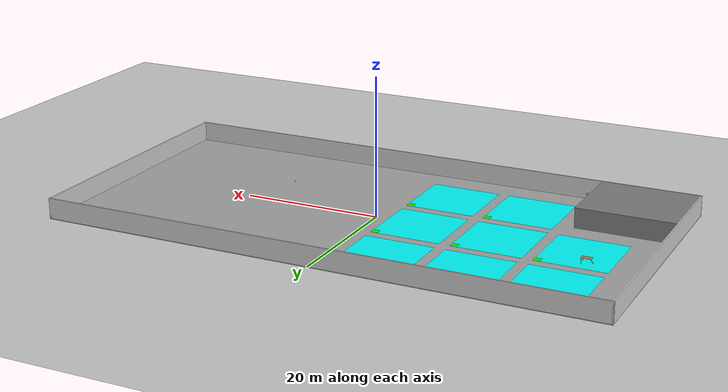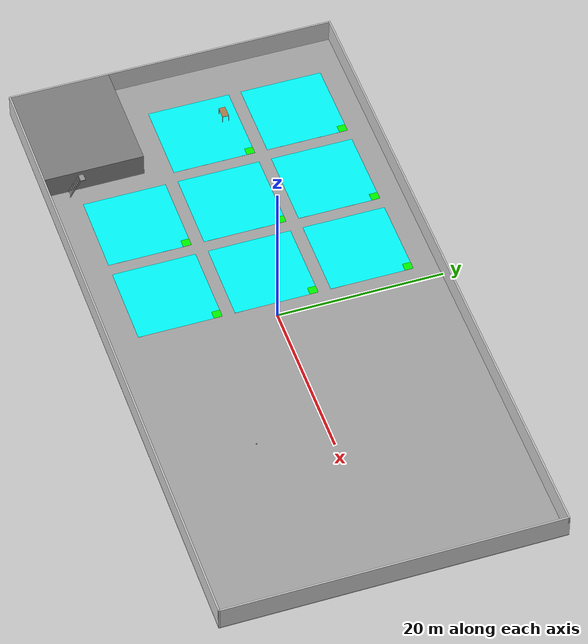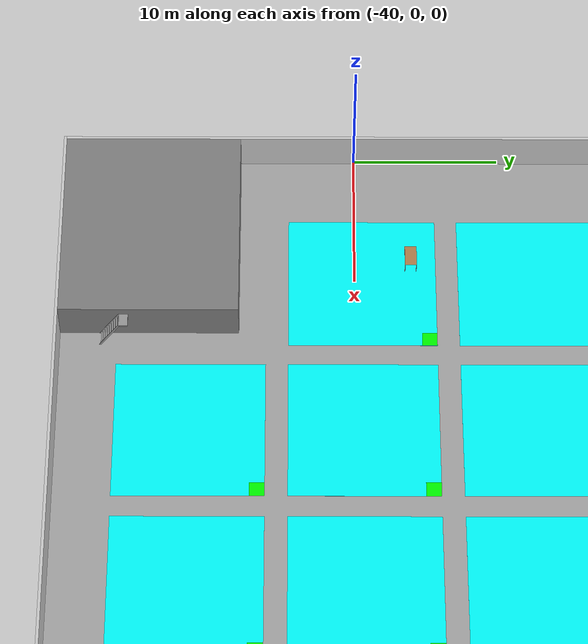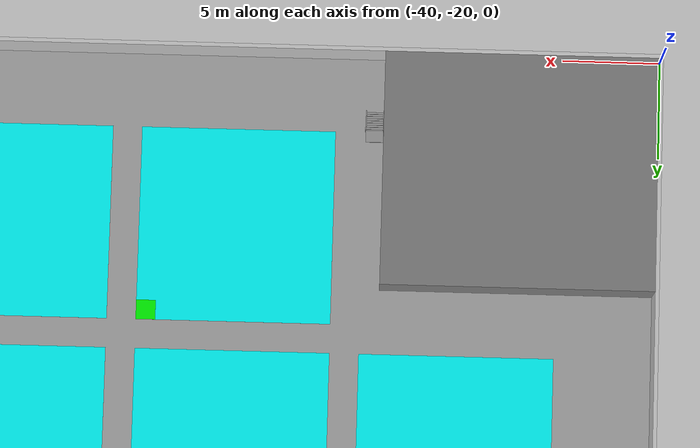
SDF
<sdf version="1.7">
 <world name="warehouse_world">
  <model name="ground_plane">
   <static>1</static>
   <link name="link">
    <collision name="collision">
     <geometry><plane><normal>0 0 1</normal><size>100 100</size></plane></geometry>
     <surface><friction><ode><mu>100</mu><mu2>50</mu2></ode></friction></surface>
    </collision>
    <visual name="visual">
     <cast_shadows>0</cast_shadows>
     <geometry><plane><normal>0 0 1</normal><size>100 100</size></plane></geometry>
     <material>
      <script><uri>file://media/materials/scripts/gazebo.material</uri><name>Gazebo/Grey</name></script>
     </material>
    </visual>
   </link>
  </model>
  <light name="sun" type="directional">
   <pose>0 0 10 0 -0 0</pose>
   <diffuse>0.8 0.8 0.8 1</diffuse>
   <specular>0.2 0.2 0.2 1</specular>
   <attenuation>
    <range>1000</range>
    <constant>0.9</constant>
    <linear>0.01</linear>
    <quadratic>0.001</quadratic>
   </attenuation>
   <direction>-0.5 0.1 -0.9</direction>
   <spot><inner_angle>0</inner_angle><outer_angle>0</outer_angle><falloff>0</falloff></spot>
  </light>
  <scene><ambient>0.8 0.8 0.8 1</ambient><background>0.95 0.95 0.95 1</background><shadows>1</shadows></scene>
  <physics name="default_physics" type="ode">
   <max_step_size>0.001</max_step_size>
   <real_time_factor>1</real_time_factor>
   <real_time_update_rate>1000</real_time_update_rate>
  </physics>
  <model name="warehouse_floor">
   <static>1</static>
   <link name="floor_link">
    <collision name="floor_collision">
     <pose>0 0 0.05 0 -0 0</pose>
     <geometry><box><size>80 40 0.1</size></box></geometry>
    </collision>
    <visual name="floor_visual">
     <pose>0 0 0.05 0 -0 0</pose>
     <geometry><box><size>80 40 0.1</size></box></geometry>
     <material><ambient>0.65 0.65 0.65 1</ambient><diffuse>0.65 0.65 0.65 1</diffuse></material>
    </visual>
   </link>
  </model>
  <model name="warehouse_walls">
   <static>1</static>
   <link name="walls_link">
    <collision name="top_wall_col">
     <pose>0 19.9 1.5 0 -0 0</pose>
     <geometry><box><size>80 0.2 3</size></box></geometry>
    </collision>
    <visual name="top_wall_vis">
     <pose>0 19.9 1.5 0 -0 0</pose>
     <geometry><box><size>80 0.2 3</size></box></geometry>
     <material><ambient>0.8 0.8 0.8 1</ambient></material>
    </visual>
    <collision name="bottom_wall_col">
     <pose>0 -19.9 1.5 0 -0 0</pose>
     <geometry><box><size>80 0.2 3</size></box></geometry>
    </collision>
    <visual name="bottom_wall_vis">
     <pose>0 -19.9 1.5 0 -0 0</pose>
     <geometry><box><size>80 0.2 3</size></box></geometry>
     <material><ambient>0.8 0.8 0.8 1</ambient></material>
    </visual>
    <collision name="left_wall_col">
     <pose>-39.9 0 1.5 0 -0 0</pose>
     <geometry><box><size>0.2 40 3</size></box></geometry>
    </collision>
    <visual name="left_wall_vis">
     <pose>-39.9 0 1.5 0 -0 0</pose>
     <geometry><box><size>0.2 40 3</size></box></geometry>
     <material><ambient>0.8 0.8 0.8 1</ambient></material>
    </visual>
    <collision name="right_wall_col">
     <pose>39.9 0 1.5 0 -0 0</pose>
     <geometry><box><size>0.2 40 3</size></box></geometry>
    </collision>
    <visual name="right_wall_vis">
     <pose>39.9 0 1.5 0 -0 0</pose>
     <geometry><box><size>0.2 40 3</size></box></geometry>
     <material><ambient>0.8 0.8 0.8 1</ambient></material>
    </visual>
   </link>
  </model>
  <model name="office">
   <static>1</static>
   <pose>-32.8 -13.8 1.5 0 -0 0</pose>
   <link name="l">
    <collision name="c"><geometry><box><size>14 12 3</size></box></geometry></collision>
    <visual name="v">
     <geometry><box><size>14 12 3</size></box></geometry>
     <material><ambient>0.5 0.5 0.5 1</ambient></material>
    </visual>
   </link>
  </model>
  <model name="assembly_zone_complex">
   <pose>-6.81613 0.515019 0 0 -0 0</pose>
   <static>1</static>
   <link name="link">
    <visual name="a1">
     <pose>-23 11.5 0.1 0 -0 0</pose>
     <geometry><box><size>10 10 0.01</size></box></geometry>
     <material><ambient>0 1 1 1</ambient></material>
    </visual>
    <visual name="p1">
     <pose>-18.5 16 0.11 0 -0 0</pose>
     <geometry><box><size>1 1 0.02</size></box></geometry>
     <material><ambient>0 1 0 1</ambient></material>
    </visual>
    <visual name="a2">
     <pose>-11.5 11.5 0.1 0 -0 0</pose>
     <geometry><box><size>10 10 0.01</size></box></geometry>
     <material><ambient>0 1 1 1</ambient></material>
    </visual>
    <visual name="p2">
     <pose>-7 16 0.11 0 -0 0</pose>
     <geometry><box><size>1 1 0.02</size></box></geometry>
     <material><ambient>0 1 0 1</ambient></material>
    </visual>
    <visual name="a3">
     <pose>0 11.5 0.1 0 -0 0</pose>
     <geometry><box><size>10 10 0.01</size></box></geometry>
     <material><ambient>0 1 1 1</ambient></material>
    </visual>
    <visual name="p3">
     <pose>4.5 16 0.11 0 -0 0</pose>
     <geometry><box><size>1 1 0.02</size></box></geometry>
     <material><ambient>0 1 0 1</ambient></material>
    </visual>
    <visual name="a4">
     <pose>-23 0 0.1 0 -0 0</pose>
     <geometry><box><size>10 10 0.01</size></box></geometry>
     <material><ambient>0 1 1 1</ambient></material>
    </visual>
    <visual name="p4">
     <pose>-18.5 4.5 0.11 0 -0 0</pose>
     <geometry><box><size>1 1 0.02</size></box></geometry>
     <material><ambient>0 1 0 1</ambient></material>
    </visual>
    <visual name="a5">
     <pose>-11.5 0 0.1 0 -0 0</pose>
     <geometry><box><size>10 10 0.01</size></box></geometry>
     <material><ambient>0 1 1 1</ambient></material>
    </visual>
    <visual name="p5">
     <pose>-7 4.5 0.11 0 -0 0</pose>
     <geometry><box><size>1 1 0.02</size></box></geometry>
     <material><ambient>0 1 0 1</ambient></material>
    </visual>
    <visual name="a6">
     <pose>0 0 0.1 0 -0 0</pose>
     <geometry><box><size>10 10 0.01</size></box></geometry>
     <material><ambient>0 1 1 1</ambient></material>
    </visual>
    <visual name="p6">
     <pose>4.5 4.5 0.11 0 -0 0</pose>
     <geometry><box><size>1 1 0.02</size></box></geometry>
     <material><ambient>0 1 0 1</ambient></material>
    </visual>
    <visual name="a8">
     <pose>-11.5 -11.5 0.1 0 -0 0</pose>
     <geometry><box><size>10 10 0.01</size></box></geometry>
     <material><ambient>0 1 1 1</ambient></material>
    </visual>
    <visual name="p8">
     <pose>-7 -7 0.11 0 -0 0</pose>
     <geometry><box><size>1 1 0.02</size></box></geometry>
     <material><ambient>0 1 0 1</ambient></material>
    </visual>
    <visual name="a9">
     <pose>0 -11.5 0.1 0 -0 0</pose>
     <geometry><box><size>10 10 0.01</size></box></geometry>
     <material><ambient>0 1 1 1</ambient></material>
    </visual>
    <visual name="p9">
     <pose>4.5 -7 0.11 0 -0 0</pose>
     <geometry><box><size>1 1 0.02</size></box></geometry>
     <material><ambient>0 1 0 1</ambient></material>
    </visual>
   </link>
  </model>
  <model name="forklift_parking">
   <static>1</static>
   <link name="forklift_link">
    <visual name="fp1">
     <pose>12 -15.5 0.001 0 -0 0</pose>
     <geometry><box><size>1 0.8 0.02</size></box></geometry>
     <material><ambient>0.95 0.95 0.2 1</ambient></material>
    </visual>
    <visual name="fp2">
     <pose>15 -15.5 0.001 0 -0 0</pose>
     <geometry><box><size>1 0.8 0.02</size></box></geometry>
     <material><ambient>0.95 0.95 0.2 1</ambient></material>
    </visual>
    <visual name="fp3">
     <pose>18 -15.5 0.001 0 -0 0</pose>
     <geometry><box><size>1 0.8 0.02</size></box></geometry>
     <material><ambient>0.95 0.95 0.2 1</ambient></material>
    </visual>
    <visual name="fp4">
     <pose>21 -15.5 0.001 0 -0 0</pose>
     <geometry><box><size>1 0.8 0.02</size></box></geometry>
     <material><ambient>0.95 0.95 0.2 1</ambient></material>
    </visual>
    <visual name="fp5">
     <pose>24 -15.5 0.001 0 -0 0</pose>
     <geometry><box><size>1 0.8 0.02</size></box></geometry>
     <material><ambient>0.95 0.95 0.2 1</ambient></material>
    </visual>
    <visual name="fp6">
     <pose>27 -15.5 0.001 0 -0 0</pose>
     <geometry><box><size>1 0.8 0.02</size></box></geometry>
     <material><ambient>0.95 0.95 0.2 1</ambient></material>
    </visual>
   </link>
  </model>
  <gravity>0 0 -9.8</gravity>
  <magnetic_field>6e-06 2.3e-05 -4.2e-05</magnetic_field>
  <atmosphere type="adiabatic"/>
  <audio><device>default</device></audio>
  <spherical_coordinates>
   <surface_model>EARTH_WGS84</surface_model>
   <latitude_deg>0</latitude_deg>
   <longitude_deg>0</longitude_deg>
   <elevation>0</elevation>
   <heading_deg>0</heading_deg>
  </spherical_coordinates>
  <model name="table">
   <static>1</static>
   <link name="link">
    <collision name="surface">
     <pose>0 0 1 0 -0 0</pose>
     <geometry><box><size>1.5 0.8 0.03</size></box></geometry>
     <surface><friction><ode><mu>0.6</mu><mu2>0.6</mu2></ode></friction></surface>
    </collision>
    <visual name="visual1">
     <pose>0 0 1 0 -0 0</pose>
     <geometry><box><size>1.5 0.8 0.03</size></box></geometry>
     <material>
      <script><uri>file://media/materials/scripts/gazebo.material</uri><name>Gazebo/Wood</name></script>
     </material>
    </visual>
    <collision name="front_left_leg">
     <pose>0.68 0.38 0.5 0 -0 0</pose>
     <geometry><cylinder><radius>0.02</radius><length>1</length></cylinder></geometry>
    </collision>
    <visual name="front_left_leg">
     <pose>0.68 0.38 0.5 0 -0 0</pose>
     <geometry><cylinder><radius>0.02</radius><length>1</length></cylinder></geometry>
     <material>
      <script><uri>file://media/materials/scripts/gazebo.material</uri><name>Gazebo/Grey</name></script>
     </material>
    </visual>
    <collision name="front_right_leg">
     <pose>0.68 -0.38 0.5 0 -0 0</pose>
     <geometry><cylinder><radius>0.02</radius><length>1</length></cylinder></geometry>
    </collision>
    <visual name="front_right_leg">
     <pose>0.68 -0.38 0.5 0 -0 0</pose>
     <geometry><cylinder><radius>0.02</radius><length>1</length></cylinder></geometry>
     <material>
      <script><uri>file://media/materials/scripts/gazebo.material</uri><name>Gazebo/Grey</name></script>
     </material>
    </visual>
    <collision name="back_right_leg">
     <pose>-0.68 -0.38 0.5 0 -0 0</pose>
     <geometry><cylinder><radius>0.02</radius><length>1</length></cylinder></geometry>
    </collision>
    <visual name="back_right_leg">
     <pose>-0.68 -0.38 0.5 0 -0 0</pose>
     <geometry><cylinder><radius>0.02</radius><length>1</length></cylinder></geometry>
     <material>
      <script><uri>file://media/materials/scripts/gazebo.material</uri><name>Gazebo/Grey</name></script>
     </material>
    </visual>
    <collision name="back_left_leg">
     <pose>-0.68 0.38 0.5 0 -0 0</pose>
     <geometry><cylinder><radius>0.02</radius><length>1</length></cylinder></geometry>
    </collision>
    <visual name="back_left_leg">
     <pose>-0.68 0.38 0.5 0 -0 0</pose>
     <geometry><cylinder><radius>0.02</radius><length>1</length></cylinder></geometry>
     <material>
      <script><uri>file://media/materials/scripts/gazebo.material</uri><name>Gazebo/Grey</name></script>
     </material>
    </visual>
   </link>
   <pose>-31.4625 3.81962 0 0 -0 0</pose>
  </model>
  <model name="ladder_60deg_0rails">
   <static>1</static>
   <link name="step0">
    <pose>0 0.15396 0.266667 0 -0 0</pose>
    <inertial>
     <mass>9.75482</mass>
     <inertia>
      <ixx>0.00957124</ixx>
      <iyy>0.65963</iyy>
      <izz>0.666842</izz>
      <ixy>0</ixy>
      <ixz>0</ixz>
      <iyz>0</iyz>
     </inertia>
    </inertial>
    <collision name="collision"><geometry><box><size>0.9 0.1016 0.0381</size></box></geometry></collision>
    <visual name="visual">
     <geometry><box><size>0.9 0.1016 0.0381</size></box></geometry>
     <material>
      <script><uri>file://media/materials/scripts/gazebo.material</uri><name>Gazebo/Grey</name></script>
     </material>
    </visual>
   </link>
   <link name="step1">
    <pose>0 0.30792 0.533333 0 -0 0</pose>
    <inertial>
     <mass>9.75482</mass>
     <inertia>
      <ixx>0.00957124</ixx>
      <iyy>0.65963</iyy>
      <izz>0.666842</izz>
      <ixy>0</ixy>
      <ixz>0</ixz>
      <iyz>0</iyz>
     </inertia>
    </inertial>
    <collision name="collision"><geometry><box><size>0.9 0.1016 0.0381</size></box></geometry></collision>
    <visual name="visual">
     <geometry><box><size>0.9 0.1016 0.0381</size></box></geometry>
     <material>
      <script><uri>file://media/materials/scripts/gazebo.material</uri><name>Gazebo/Grey</name></script>
     </material>
    </visual>
   </link>
   <link name="step2">
    <pose>0 0.46188 0.8 0 -0 0</pose>
    <inertial>
     <mass>9.75482</mass>
     <inertia>
      <ixx>0.00957124</ixx>
      <iyy>0.65963</iyy>
      <izz>0.666842</izz>
      <ixy>0</ixy>
      <ixz>0</ixz>
      <iyz>0</iyz>
     </inertia>
    </inertial>
    <collision name="collision"><geometry><box><size>0.9 0.1016 0.0381</size></box></geometry></collision>
    <visual name="visual">
     <geometry><box><size>0.9 0.1016 0.0381</size></box></geometry>
     <material>
      <script><uri>file://media/materials/scripts/gazebo.material</uri><name>Gazebo/Grey</name></script>
     </material>
    </visual>
   </link>
   <link name="step3">
    <pose>0 0.61584 1.06667 0 -0 0</pose>
    <inertial>
     <mass>9.75482</mass>
     <inertia>
      <ixx>0.00957124</ixx>
      <iyy>0.65963</iyy>
      <izz>0.666842</izz>
      <ixy>0</ixy>
      <ixz>0</ixz>
      <iyz>0</iyz>
     </inertia>
    </inertial>
    <collision name="collision"><geometry><box><size>0.9 0.1016 0.0381</size></box></geometry></collision>
    <visual name="visual">
     <geometry><box><size>0.9 0.1016 0.0381</size></box></geometry>
     <material>
      <script><uri>file://media/materials/scripts/gazebo.material</uri><name>Gazebo/Grey</name></script>
     </material>
    </visual>
   </link>
   <link name="step4">
    <pose>0 0.7698 1.33333 0 -0 0</pose>
    <inertial>
     <mass>9.75482</mass>
     <inertia>
      <ixx>0.00957124</ixx>
      <iyy>0.65963</iyy>
      <izz>0.666842</izz>
      <ixy>0</ixy>
      <ixz>0</ixz>
      <iyz>0</iyz>
     </inertia>
    </inertial>
    <collision name="collision"><geometry><box><size>0.9 0.1016 0.0381</size></box></geometry></collision>
    <visual name="visual">
     <geometry><box><size>0.9 0.1016 0.0381</size></box></geometry>
     <material>
      <script><uri>file://media/materials/scripts/gazebo.material</uri><name>Gazebo/Grey</name></script>
     </material>
    </visual>
   </link>
   <link name="step5">
    <pose>0 0.92376 1.6 0 -0 0</pose>
    <inertial>
     <mass>9.75482</mass>
     <inertia>
      <ixx>0.00957124</ixx>
      <iyy>0.65963</iyy>
      <izz>0.666842</izz>
      <ixy>0</ixy>
      <ixz>0</ixz>
      <iyz>0</iyz>
     </inertia>
    </inertial>
    <collision name="collision"><geometry><box><size>0.9 0.1016 0.0381</size></box></geometry></collision>
    <visual name="visual">
     <geometry><box><size>0.9 0.1016 0.0381</size></box></geometry>
     <material>
      <script><uri>file://media/materials/scripts/gazebo.material</uri><name>Gazebo/Grey</name></script>
     </material>
    </visual>
   </link>
   <link name="step6">
    <pose>0 1.07772 1.86667 0 -0 0</pose>
    <inertial>
     <mass>9.75482</mass>
     <inertia>
      <ixx>0.00957124</ixx>
      <iyy>0.65963</iyy>
      <izz>0.666842</izz>
      <ixy>0</ixy>
      <ixz>0</ixz>
      <iyz>0</iyz>
     </inertia>
    </inertial>
    <collision name="collision"><geometry><box><size>0.9 0.1016 0.0381</size></box></geometry></collision>
    <visual name="visual">
     <geometry><box><size>0.9 0.1016 0.0381</size></box></geometry>
     <material>
      <script><uri>file://media/materials/scripts/gazebo.material</uri><name>Gazebo/Grey</name></script>
     </material>
    </visual>
   </link>
   <link name="step7">
    <pose>0 1.23168 2.13333 0 -0 0</pose>
    <inertial>
     <mass>9.75482</mass>
     <inertia>
      <ixx>0.00957124</ixx>
      <iyy>0.65963</iyy>
      <izz>0.666842</izz>
      <ixy>0</ixy>
      <ixz>0</ixz>
      <iyz>0</iyz>
     </inertia>
    </inertial>
    <collision name="collision"><geometry><box><size>0.9 0.1016 0.0381</size></box></geometry></collision>
    <visual name="visual">
     <geometry><box><size>0.9 0.1016 0.0381</size></box></geometry>
     <material>
      <script><uri>file://media/materials/scripts/gazebo.material</uri><name>Gazebo/Grey</name></script>
     </material>
    </visual>
   </link>
   <link name="landing">
    <pose>0 1.68564 2.4 0 -0 0</pose>
    <inertial>
     <mass>57.6072</mass>
     <inertia><ixx>1.73518</ixx><iyy>3.89545</iyy><izz>5.6167</izz><ixy>0</ixy><ixz>0</ixz><iyz>0</iyz></inertia>
    </inertial>
    <collision name="collision"><geometry><box><size>0.9 0.6 0.1016</size></box></geometry></collision>
    <visual name="visual">
     <geometry><box><size>0.9 0.6 0.1016</size></box></geometry>
     <material>
      <script><uri>file://media/materials/scripts/gazebo.material</uri><name>Gazebo/Grey</name></script>
     </material>
    </visual>
   </link>
   <link name="left_side_wall">
    <pose>-0.45 0.69282 1.2 1.0472 -0 0</pose>
    <collision name="collision"><geometry><box><size>0.0508 2.85128 0.13</size></box></geometry></collision>
    <visual name="visual">
     <geometry><box><size>0.0508 2.85128 0.13</size></box></geometry>
     <material>
      <script><uri>file://media/materials/scripts/gazebo.material</uri><name>Gazebo/Grey</name></script>
     </material>
    </visual>
   </link>
   <link name="right_side_wall">
    <pose>0.45 0.69282 1.2 1.0472 -0 0</pose>
    <collision name="collision"><geometry><box><size>0.0508 2.85128 0.13</size></box></geometry></collision>
    <visual name="visual">
     <geometry><box><size>0.0508 2.85128 0.13</size></box></geometry>
     <material>
      <script><uri>file://media/materials/scripts/gazebo.material</uri><name>Gazebo/Grey</name></script>
     </material>
    </visual>
   </link>
   <pose>-25.3385 -17.1324 0 0 -0 0</pose>
  </model>
  <model name="camera">
   <pose>17.215 -8.21722 0.15 1.5708 -0 0.019241</pose>
   <link name="link">
    <inertial>
     <mass>0.1</mass>
     <inertia>
      <ixx>0.000166667</ixx>
      <iyy>0.000166667</iyy>
      <izz>0.000166667</izz>
      <ixy>0</ixy>
      <ixz>0</ixz>
      <iyz>0</iyz>
     </inertia>
    </inertial>
    <collision name="collision"><geometry><box><size>0.1 0.1 0.1</size></box></geometry></collision>
    <visual name="visual"><geometry><box><size>0.1 0.1 0.1</size></box></geometry></visual>
    <sensor name="camera" type="camera">
     <camera>
      <horizontal_fov>1.047</horizontal_fov>
      <image><width>320</width><height>240</height></image>
      <clip><near>0.1</near><far>100</far></clip>
     </camera>
     <always_on>1</always_on>
     <update_rate>30</update_rate>
     <visualize>1</visualize>
    </sensor>
   </link>
  </model>
 </world>
</sdf>
